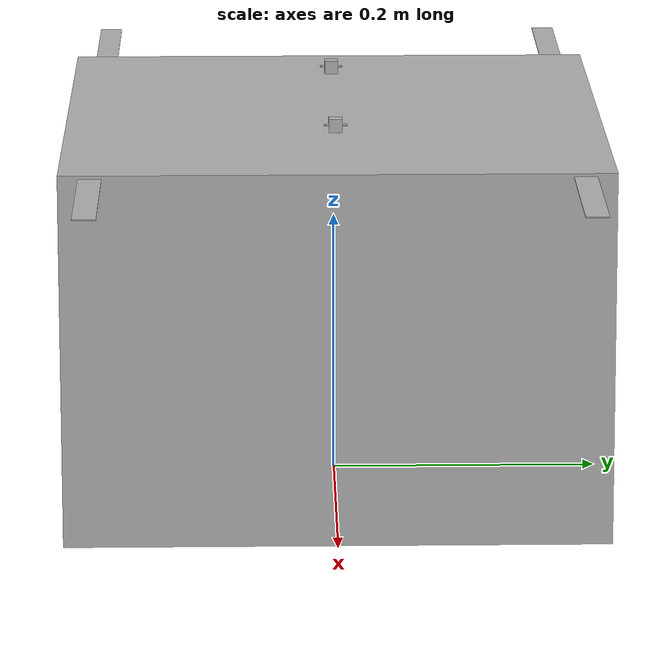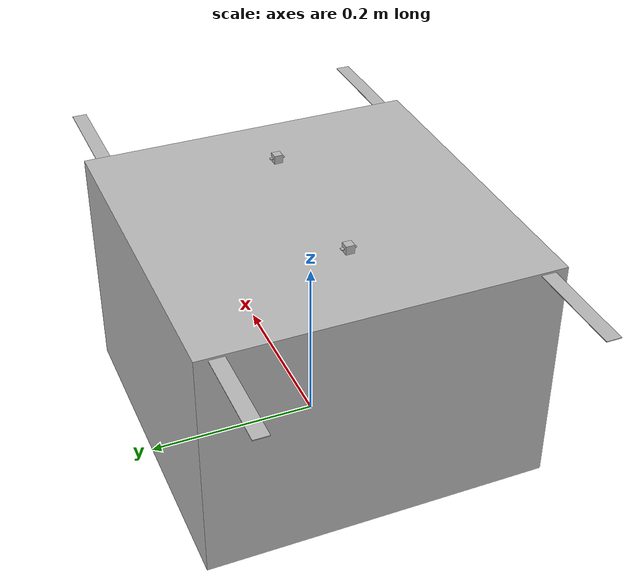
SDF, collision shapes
<?xml version="1.0" encoding="UTF-8"?>
<sdf version='1.9'>
  <model name='v500_dual_60'>
    <pose>0 0 0.217 0 0 0</pose>
    <self_collide>false</self_collide>
    <static>false</static>
    <link name="base_link">
     <inertial>
        <pose>0 0 0.015702 0 0 0</pose>
        <mass>2.247</mass>
        <inertia>
          <ixx>0.0133</ixx>
          <ixy>0</ixy>
          <ixz>0</ixz>
          <iyy>0.0133</iyy>
          <iyz>0</iyz>
          <izz>0.0249</izz>
        </inertia>
      </inertial>
      <gravity>true</gravity>
      <velocity_decay/>
      <visual name="base_link_visual">
        <pose>0 0 0 0 0 0</pose>
        <geometry>
          <mesh>
            <scale>1 1 1</scale>
            <uri>model://custom_x500_dual/meshes/uav_frame_x500_simple.dae</uri>
          </mesh>
        </geometry>
      </visual>
      <!-- Collision definition -->
      <collision name="base_link_collision_0">
        <pose> 0 0 -0.076276 0 0 0</pose>
        <geometry>
          <box>
            <size>0.40 0.40 0.278 </size>
          </box>
        </geometry>
        <surface>
          <contact>
            <ode>
              <min_depth>0.001</min_depth>
              <max_vel>0</max_vel>
            </ode>
          </contact>
          <friction>
            <ode/>
          </friction>
        </surface>
      </collision>
<!-- Collision definition END-->
<!-- Flight Sensors  -->
      <sensor name="air_pressure_sensor" type="air_pressure">
        <always_on>1</always_on>
        <update_rate>50</update_rate>
        <air_pressure>
          <pressure>
            <noise type="gaussian">
              <mean>0</mean>
              <stddev>0.01</stddev>
            </noise>
          </pressure>
        </air_pressure>
      </sensor>

      <sensor name="imu_sensor" type="imu">
        <always_on>1</always_on>
        <update_rate>250</update_rate>
      </sensor>
<!-- Flight Sensors  -->
    </link>
<!-- Propellers definition -->
    <link name="rotor_0">
        <gravity>true</gravity>
        <self_collide>false</self_collide>
        <velocity_decay/>
        <pose>0.176876 -0.176876 0.06 0 0 0</pose>
        <inertial>
            <pose>0 0 0 0 0 0</pose>
              <mass>0.005</mass>
              <inertia>
                <ixx>9.75e-07</ixx>
                <ixy>0</ixy>
                <ixz>0</ixz>
                <iyy>0.000166704</iyy>
                <iyz>0</iyz>
                <izz>0.000167604</izz>
              </inertia>
        </inertial>
       <visual name="rotor_0_visual">
        <pose>0 0 0 0 0 0</pose>
        <geometry>
          <mesh>
            <scale>1 1 1</scale>
            <uri>model://custom_x500_dual/meshes/holybro_propeller_ccw.dae</uri>
          </mesh>
        </geometry>
      </visual>
      <collision name="rotor_0_collision">
        <pose>0 0 0 0 0 0 </pose>
        <geometry>
          <box>
            <size>0.2792307692307692 0.016923076923076923 0.0008461538461538462</size>
          </box>
        </geometry>
        <surface>
          <contact>
            <ode>
              <min_depth>0.001</min_depth>
              <max_vel>0</max_vel>
            </ode>
          </contact>
          <friction>
            <ode/>
          </friction>
        </surface>
      </collision>
    </link>
    <joint name="rotor_0_joint" type="revolute">
      <parent>base_link</parent>
      <child>rotor_0</child>
      <axis>
        <xyz>0 0 1</xyz>
        <limit>
          <lower>-1e+16</lower>
          <upper>1e+16</upper>
        </limit>
        <dynamics>
          <spring_reference>0</spring_reference>
          <spring_stiffness>0</spring_stiffness>
        </dynamics>
      </axis>
    </joint>

    <link name="rotor_1">
        <gravity>true</gravity>
        <self_collide>false</self_collide>
        <velocity_decay/>
        <pose>-0.176876 0.176876 0.06 0 0 0</pose>
        <inertial>
            <pose>0 0 0 0 0 0</pose>
              <mass>0.005</mass>
              <inertia>
                <ixx>9.75e-07</ixx>
                <ixy>0</ixy>
                <ixz>0</ixz>
                <iyy>0.000166704</iyy>
                <iyz>0</iyz>
                <izz>0.000167604</izz>
              </inertia>
        </inertial>
       <visual name="rotor_1_visual">
        <pose>0 0 0 0 0 0</pose>
        <geometry>
          <mesh>
            <scale>1 1 1</scale>
            <uri>model://custom_x500_dual/meshes/holybro_propeller_ccw.dae</uri>
          </mesh>
        </geometry>
      </visual>
      <collision name="rotor_1_collision">
        <pose>0 0 0 0 0 0 </pose>
        <geometry>
          <box>
            <size>0.2792307692307692 0.016923076923076923 0.0008461538461538462</size>
          </box>
        </geometry>
        <surface>
          <contact>
            <ode>
              <min_depth>0.001</min_depth>
              <max_vel>0</max_vel>
            </ode>
          </contact>
          <friction>
            <ode/>
          </friction>
        </surface>
      </collision>
    </link>
    <joint name="rotor_1_joint" type="revolute">
      <parent>base_link</parent>
      <child>rotor_1</child>
      <axis>
        <xyz>0 0 1</xyz>
        <limit>
          <lower>-1e+16</lower>
          <upper>1e+16</upper>
        </limit>
        <dynamics>
          <spring_reference>0</spring_reference>
          <spring_stiffness>0</spring_stiffness>
        </dynamics>
      </axis>
    </joint>

    <link name="rotor_2">
        <gravity>true</gravity>
        <self_collide>false</self_collide>
        <velocity_decay/>
        <pose> 0.176876 0.176876 0.06 0 0 0</pose>
        <inertial>
            <pose>0 0 0 0 0 0</pose>
              <mass>0.005</mass>
              <inertia>
                <ixx>9.75e-07</ixx>
                <ixy>0</ixy>
                <ixz>0</ixz>
                <iyy>0.000166704</iyy>
                <iyz>0</iyz>
                <izz>0.000167604</izz>
              </inertia>
        </inertial>
       <visual name="rotor_2_visual">
        <pose>0 0 0 0 0 0</pose>
        <geometry>
          <mesh>
            <scale>1 1 1</scale>
            <uri>model://custom_x500_dual/meshes/holybro_propeller_cw.dae</uri>
          </mesh>
        </geometry>
      </visual>
      <collision name="rotor_2_collision">
        <pose>0 0 0 0 0 0 </pose>
        <geometry>
          <box>
            <size>0.2792307692307692 0.016923076923076923 0.0008461538461538462</size>
          </box>
        </geometry>
        <surface>
          <contact>
            <ode>
              <min_depth>0.001</min_depth>
              <max_vel>0</max_vel>
            </ode>
          </contact>
          <friction>
            <ode/>
          </friction>
        </surface>
      </collision>
    </link>
    <joint name="rotor_2_joint" type="revolute">
      <parent>base_link</parent>
      <child>rotor_2</child>
      <axis>
        <xyz>0 0 1</xyz>
        <limit>
          <lower>-1e+16</lower>
          <upper>1e+16</upper>
        </limit>
        <dynamics>
          <spring_reference>0</spring_reference>
          <spring_stiffness>0</spring_stiffness>
        </dynamics>
      </axis>
    </joint>

    <link name="rotor_3">
        <gravity>true</gravity>
        <self_collide>false</self_collide>
        <velocity_decay/>
        <pose> -0.176876 -0.176876 0.06 0 0 0</pose>
        <inertial>
            <pose>0 0 0 0 0 0</pose>
              <mass>0.005</mass>
              <inertia>
                <ixx>9.75e-07</ixx>
                <ixy>0</ixy>
                <ixz>0</ixz>
                <iyy>0.000166704</iyy>
                <iyz>0</iyz>
                <izz>0.000167604</izz>
              </inertia>
        </inertial>
       <visual name="rotor_3_visual">
        <pose>0 0 0 0 0 0</pose>
        <geometry>
          <mesh>
            <scale>1 1 1</scale>
            <uri>model://custom_x500_dual/meshes/holybro_propeller_cw.dae</uri>
          </mesh>
        </geometry>
      </visual>
      <collision name="rotor_3_collision">
        <pose>0 0 0 0 0 0 </pose>
        <geometry>
          <box>
            <size>0.2792307692307692 0.016923076923076923 0.0008461538461538462</size>
          </box>
        </geometry>
        <surface>
          <contact>
            <ode>
              <min_depth>0.001</min_depth>
              <max_vel>0</max_vel>
            </ode>
          </contact>
          <friction>
            <ode/>
          </friction>
        </surface>
      </collision>
    </link>
    <joint name="rotor_3_joint" type="revolute">
      <parent>base_link</parent>
      <child>rotor_3</child>
      <axis>
        <xyz>0 0 1</xyz>
        <limit>
          <lower>-1e+16</lower>
          <upper>1e+16</upper>
        </limit>
        <dynamics>
          <spring_reference>0</spring_reference>
          <spring_stiffness>0</spring_stiffness>
        </dynamics>
      </axis>
    </joint>
<!-- Propellers definition END-->

 <link name="edf_1_ball">
        <gravity>true</gravity>
        <self_collide>false</self_collide>
        <velocity_decay/>
        <pose> 0.100 0 0.076 0 0 0 </pose>
        <inertial>
            <mass>0.175</mass>
            <inertia>
              <ixx>6.3787e-05</ixx>
              <iyy>8.6158e-05</iyy>
              <izz>8.6158e-05</izz>
            </inertia>
        </inertial>
    </link>

    <joint name="edf_1_mass" type="fixed">
      <parent>base_link</parent>
      <child>edf_1_ball</child>
    </joint>
<!-- EDF Mass -->
  <link name="edf_2_ball">
        <gravity>true</gravity>
        <self_collide>false</self_collide>
        <velocity_decay/>
        <pose> -0.100 0 0.076 0 0 3.145159 </pose>
         <inertial>
            <mass>0.175</mass>
            <inertia>
              <ixx>6.3787e-05</ixx>
              <iyy>8.6158e-05</iyy>
              <izz>8.6158e-05</izz>
            </inertia>
        </inertial>
    </link>

    <joint name="edf_2_mass" type="fixed">
      <parent>base_link</parent>
      <child>edf_2_ball</child>
    </joint>

<!-- EDF Mass -->

<!-- EDF Frame 200 END -->
  <link name="edf_1_body">
        <gravity>true</gravity>
        <self_collide>false</self_collide>
        <velocity_decay/>
        <pose> 0.100 0 0.076 0 0 0 </pose>
        <inertial>
          <mass>0.00000001</mass>
          <inertia>
            <ixx>0.000001</ixx>
            <ixy>0.0</ixy>
            <iyy>0.000001</iyy>
            <ixz>0.0</ixz>
            <iyz>0.0</iyz>
            <izz>0.000001</izz>
          </inertia>
        </inertial>
       <visual name="edf_1_visual">
        <pose>0 0 0 0 0 0</pose>
        <geometry>
          <mesh>
            <scale>1 1 1</scale>
            <uri>model://custom_x500_dual/meshes/edf_housing.dae</uri>
          </mesh>
        </geometry>
      </visual>
      <collision name="edf_1_collision">
        <pose>0 0 0 0 0 0 </pose>
        <geometry>
          <box>
            <size>0.01 0.01 0.01</size>
          </box>
        </geometry>
        <surface>
          <contact>
            <ode>
              <min_depth>0.001</min_depth>
              <max_vel>0</max_vel>
            </ode>
          </contact>
          <friction>
            <ode/>
          </friction>
        </surface>
      </collision>
    </link>
    <joint name="edf_1_joint" type="revolute">
      <parent>base_link</parent>
      <child>edf_1_body</child>
      <pose> 0 0 0 0 0 0 </pose>
      <axis>
        <xyz>0 0 1</xyz>
        <limit>
          <lower>-0.53</lower>
          <upper>0.53</upper>
        </limit>
        <dynamics>
          <friction>1.0</friction>
          <spring_reference>0</spring_reference>
          <spring_stiffness>0</spring_stiffness>
        </dynamics>
      </axis>
    </joint>

    <link name="edf_2_body">
        <gravity>true</gravity>
        <self_collide>false</self_collide>
        <velocity_decay/>
        <pose> -0.100 0 0.076 0 0 3.145159 </pose>
        <inertial>
          <mass>0.00000001</mass>
          <inertia>
            <ixx>0.000001</ixx>
            <ixy>0.0</ixy>
            <iyy>0.000001</iyy>
            <ixz>0.0</ixz>
            <iyz>0.0</iyz>
            <izz>0.000001</izz>
          </inertia>
        </inertial>
      <visual name="edf_2_visual">
        <pose>0 0 0 0 0 0</pose>
        <geometry>
          <mesh>
            <scale>1 1 1</scale>
            <uri>model://custom_x500_dual/meshes/edf_housing.dae</uri>
          </mesh>
        </geometry>
      </visual>
      <collision name="edf_2_collision">
        <pose>0 0 0 0 0 0 </pose>
        <geometry>
          <box>
            <size>0.01 0.01 0.01</size>
          </box>
        </geometry>
        <surface>
          <contact>
            <ode>
              <min_depth>0.001</min_depth>
              <max_vel>0</max_vel>
            </ode>
          </contact>
          <friction>
            <ode/>
          </friction>
        </surface>
      </collision>
    </link>
    <joint name="edf_2_joint" type="revolute">
      <parent>base_link</parent>
      <child>edf_2_body</child>
      <pose> 0 0 0 0 0 0 </pose>
      <axis>
        <xyz>0 0 1</xyz>
        <limit>
          <lower>-0.53</lower>
          <upper>0.53</upper>
        </limit>
        <dynamics>
          <friction>1.0</friction>
          <spring_reference>0</spring_reference>
          <spring_stiffness>0</spring_stiffness>
        </dynamics>
      </axis>
    </joint>

<!-- Horizontal thrusters -->
    <link name="rotor_5">
        <gravity>true</gravity>
        <self_collide>false</self_collide>
        <velocity_decay/>
        <pose> -0.100 0 0.076 0 1.5708 0</pose>
        <inertial>
            <pose>0 0 0 0 0 0</pose>
              <mass>0.005</mass>
              <inertia>
                <ixx>9.75e-07</ixx>
                <ixy>0</ixy>
                <ixz>0</ixz>
                <iyy>0.000166704</iyy>
                <iyz>0</iyz>
                <izz>0.000167604</izz>
              </inertia>
        </inertial>
       <visual name="rotor_5_visual">
        <pose>0 0 0 0 0 0</pose>
        <geometry>
          <mesh>
            <scale>1 1 1</scale>
            <uri>model://custom_x500_dual/meshes/edf_impeler.dae</uri>
          </mesh>
        </geometry>
      </visual>
      <collision name="rotor_5_collision">
        <pose>0 0 0 0 0 0 </pose>
        <geometry>
          <box>
            <size>0.0008461538461538462 0.016923076923076923 0.004</size>
          </box>
        </geometry>
        <surface>
          <contact>
            <ode>
              <min_depth>0.001</min_depth>
              <max_vel>0</max_vel>
            </ode>
          </contact>
          <friction>
            <ode/>
          </friction>
        </surface>
      </collision>
    </link>
    <joint name="rotor_5_joint" type="revolute">
      <parent>edf_2_body</parent>
      <child>rotor_5</child>
      <axis>
        <xyz>0 0 1</xyz>
        <limit>
          <lower>-1e+16</lower>
          <upper>1e+16</upper>
        </limit>
        <dynamics>
          <spring_reference>0</spring_reference>
          <spring_stiffness>0</spring_stiffness>
        </dynamics>
      </axis>
    </joint>

    <link name="rotor_4">
        <gravity>true</gravity>
        <self_collide>false</self_collide>
        <velocity_decay/>
        <pose> 0.100 0 0.076 0 1.5708 3.145159</pose>
        <inertial>
            <pose>0 0 0 0 0 0</pose>
              <mass>0.005</mass>
              <inertia>
                <ixx>9.75e-07</ixx>
                <ixy>0</ixy>
                <ixz>0</ixz>
                <iyy>0.000166704</iyy>
                <iyz>0</iyz>
                <izz>0.000167604</izz>
              </inertia>
        </inertial>
       <visual name="rotor_4_visual">
        <pose>0 0 0 0 0 0</pose>
        <geometry>
          <mesh>
            <scale>1 1 1</scale>
            <uri>model://custom_x500_dual/meshes/edf_impeler.dae</uri>
          </mesh>
        </geometry>
      </visual>
      <collision name="rotor_4_collision">
        <pose>0 0 0 0 0 0 </pose>
        <geometry>
          <box>
            <size>0.0008461538461538462 0.016923076923076923 0.004</size>
          </box>
        </geometry>
        <surface>
          <contact>
            <ode>
              <min_depth>0.001</min_depth>
              <max_vel>0</max_vel>
            </ode>
          </contact>
          <friction>
            <ode/>
          </friction>
        </surface>
      </collision>
    </link>

    <joint name="rotor_4_joint" type="revolute">
      <parent>edf_1_body</parent>
      <child>rotor_4</child>
      <axis>
        <xyz>0 0 1</xyz>
        <limit>
          <lower>-1e+16</lower>
          <upper>1e+16</upper>
        </limit>
        <dynamics>
          <spring_reference>0</spring_reference>
          <spring_stiffness>0</spring_stiffness>
        </dynamics>
      </axis>
    </joint>
<!-- Manipulator arm  END -->
<!-- Additional Rotors 4,5END -->

   <plugin filename="gz-sim-multicopter-motor-model-system" name="gz::sim::systems::MulticopterMotorModel">
      <jointName>rotor_0_joint</jointName>
      <linkName>rotor_0</linkName>
      <turningDirection>ccw</turningDirection>
      <timeConstantUp>0.0125</timeConstantUp>
      <timeConstantDown>0.025</timeConstantDown>
      <maxRotVelocity>1000</maxRotVelocity>
      <motorConstant>11.1913e-06</motorConstant>
      <momentConstant>0.016</momentConstant>
      <commandSubTopic>command/motor_speed</commandSubTopic>
      <motorNumber>0</motorNumber>
      <rotorDragCoefficient>8.06428e-05</rotorDragCoefficient>
      <rollingMomentCoefficient>1e-06</rollingMomentCoefficient>
      <rotorVelocitySlowdownSim>10</rotorVelocitySlowdownSim>
      <motorType>velocity</motorType>
    </plugin>
    <plugin filename="gz-sim-multicopter-motor-model-system" name="gz::sim::systems::MulticopterMotorModel">
      <jointName>rotor_1_joint</jointName>
      <linkName>rotor_1</linkName>
      <turningDirection>ccw</turningDirection>
      <timeConstantUp>0.0125</timeConstantUp>
      <timeConstantDown>0.025</timeConstantDown>
      <maxRotVelocity>1000</maxRotVelocity>
      <motorConstant>11.1913e-06</motorConstant>
      <momentConstant>0.016</momentConstant>
      <commandSubTopic>command/motor_speed</commandSubTopic>
      <motorNumber>1</motorNumber>
      <rotorDragCoefficient>8.06428e-05</rotorDragCoefficient>
      <rollingMomentCoefficient>1e-06</rollingMomentCoefficient>
      <rotorVelocitySlowdownSim>10</rotorVelocitySlowdownSim>
      <motorType>velocity</motorType>
    </plugin>
    <plugin filename="gz-sim-multicopter-motor-model-system" name="gz::sim::systems::MulticopterMotorModel">
      <jointName>rotor_2_joint</jointName>
      <linkName>rotor_2</linkName>
      <turningDirection>cw</turningDirection>
      <timeConstantUp>0.0125</timeConstantUp>
      <timeConstantDown>0.025</timeConstantDown>
      <maxRotVelocity>1000</maxRotVelocity>
      <motorConstant>11.1913e-06</motorConstant>
      <momentConstant>0.016</momentConstant>
      <commandSubTopic>command/motor_speed</commandSubTopic>
      <motorNumber>2</motorNumber>
      <rotorDragCoefficient>8.06428e-05</rotorDragCoefficient>
      <rollingMomentCoefficient>1e-06</rollingMomentCoefficient>
      <rotorVelocitySlowdownSim>10</rotorVelocitySlowdownSim>
      <motorType>velocity</motorType>
    </plugin>
    <plugin filename="gz-sim-multicopter-motor-model-system" name="gz::sim::systems::MulticopterMotorModel">
      <jointName>rotor_3_joint</jointName>
      <linkName>rotor_3</linkName>
      <turningDirection>cw</turningDirection>
      <timeConstantUp>0.0125</timeConstantUp>
      <timeConstantDown>0.025</timeConstantDown>
      <maxRotVelocity>1000</maxRotVelocity>
      <motorConstant>11.1913e-06</motorConstant>
      <momentConstant>0.016</momentConstant>
      <commandSubTopic>command/motor_speed</commandSubTopic>
      <motorNumber>3</motorNumber>
      <rotorDragCoefficient>8.06428e-05</rotorDragCoefficient>
      <rollingMomentCoefficient>1e-06</rollingMomentCoefficient>
      <rotorVelocitySlowdownSim>10</rotorVelocitySlowdownSim>
      <motorType>velocity</motorType>
    </plugin>

    <!-- Horizontal thrusters -->
    <plugin filename="gz-sim-multicopter-motor-model-system" name="gz::sim::systems::MulticopterMotorModel">
      <jointName>rotor_4_joint</jointName>
      <linkName>rotor_4</linkName>
      <turningDirection>ccw</turningDirection>
      <timeConstantUp>0.0125</timeConstantUp>
      <timeConstantDown>0.025</timeConstantDown>
      <maxRotVelocity>1000</maxRotVelocity>
      <motorConstant>8.54858e-06</motorConstant>
      <momentConstant>0.016</momentConstant>
      <commandSubTopic>command/motor_speed</commandSubTopic>
      <motorNumber>4</motorNumber>
      <rotorDragCoefficient>8.06428e-05</rotorDragCoefficient>
      <rollingMomentCoefficient>1e-06</rollingMomentCoefficient>
      <rotorVelocitySlowdownSim>10</rotorVelocitySlowdownSim>
      <motorType>velocity</motorType>
    </plugin>

    <plugin filename="gz-sim-multicopter-motor-model-system" name="gz::sim::systems::MulticopterMotorModel">
      <jointName>rotor_5_joint</jointName>
      <linkName>rotor_5</linkName>
      <turningDirection>ccw</turningDirection>
      <timeConstantUp>0.0125</timeConstantUp>
      <timeConstantDown>0.025</timeConstantDown>
      <maxRotVelocity>1000</maxRotVelocity>
      <motorConstant>8.54858e-06</motorConstant>
      <momentConstant>0.016</momentConstant>
      <commandSubTopic>command/motor_speed</commandSubTopic>
      <motorNumber>5</motorNumber>
      <rotorDragCoefficient>8.06428e-05</rotorDragCoefficient>
      <rollingMomentCoefficient>1e-06</rollingMomentCoefficient>
      <rotorVelocitySlowdownSim>10</rotorVelocitySlowdownSim>
      <motorType>velocity</motorType>
    </plugin>
<!-- Horizontal thrusters END-->

  </model>
</sdf>
